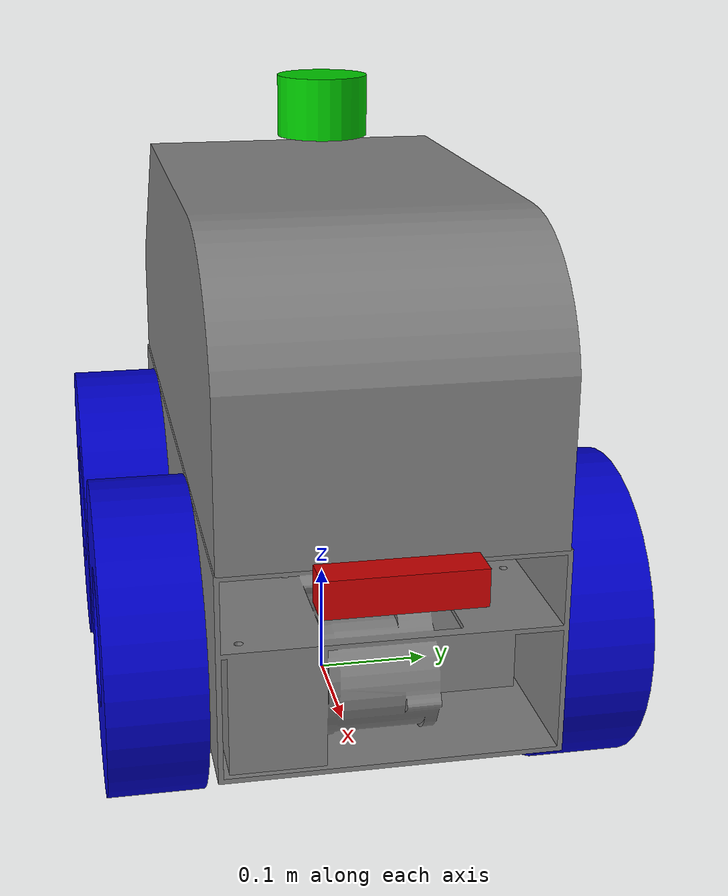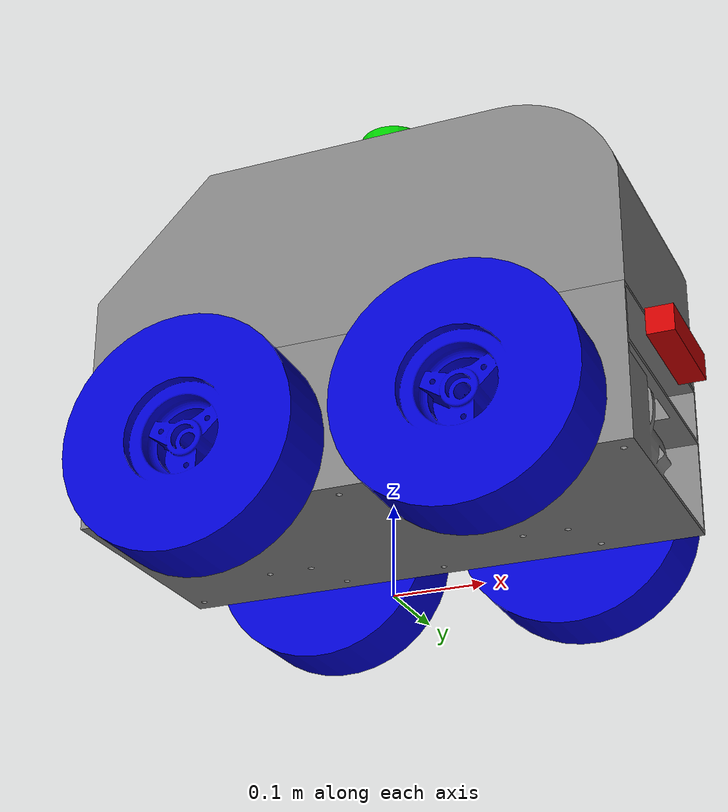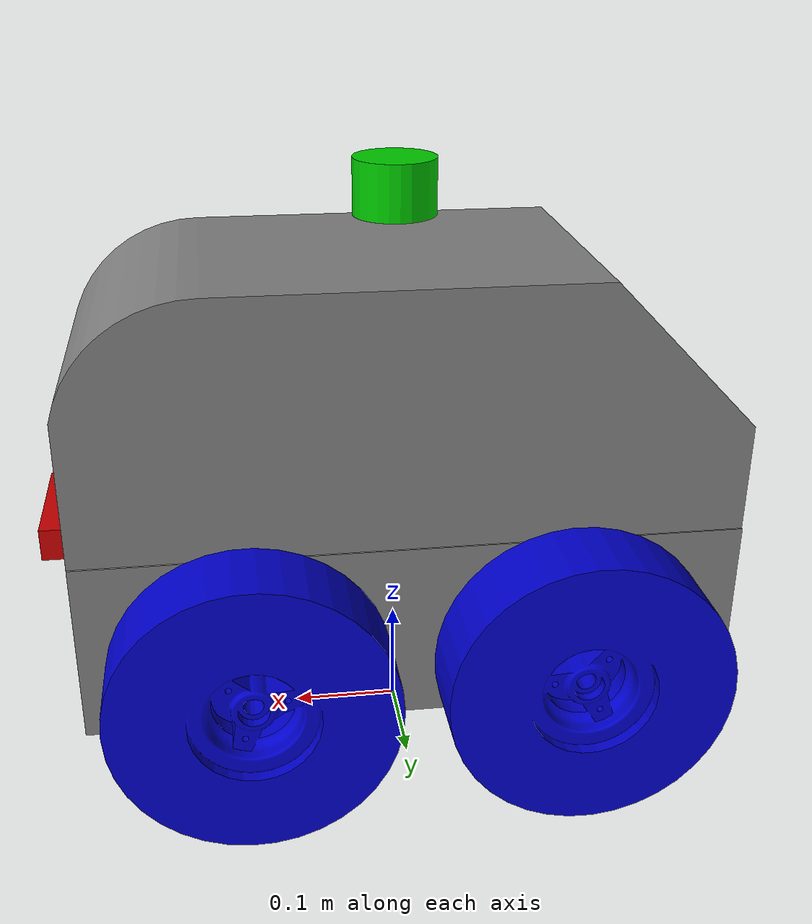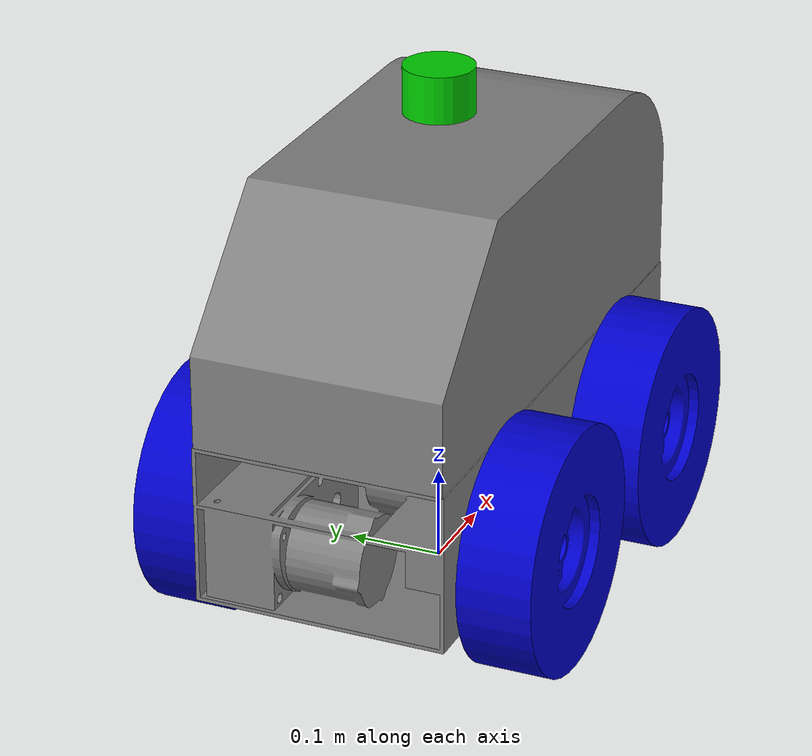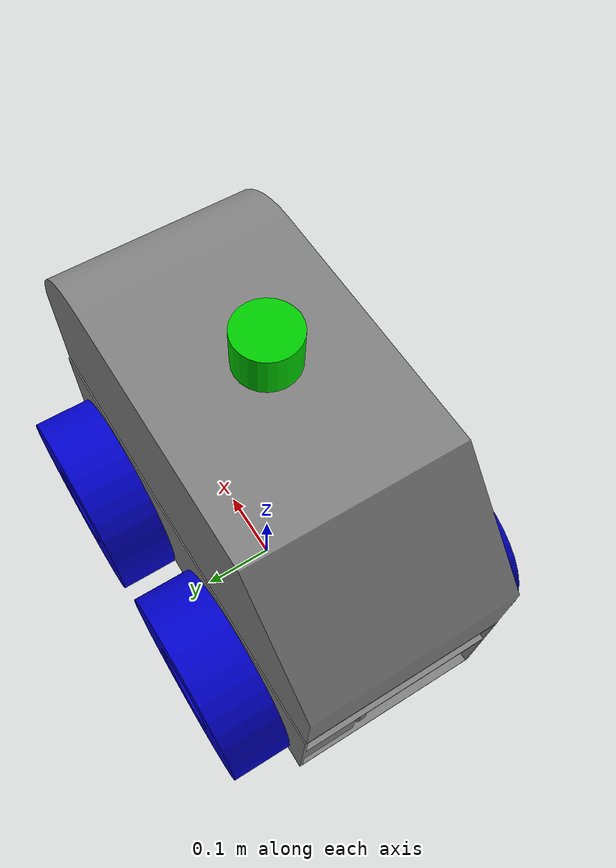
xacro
<?xml version="1.0"?>
<robot name="grass_hopper" xmlns:xacro="http://ros.org/wiki/xacro">

  <material name="black">
      <color rgba="0.0 0.0 0.0 1.0"/>
  </material>

  <material name="dark">
    <color rgba="0.3 0.3 0.3 1.0"/>
  </material>

  <material name="light_black">
    <color rgba="0.4 0.4 0.4 1.0"/>
  </material>

  <material name="blue">
    <color rgba="0.0 0.0 0.8 1.0"/>
  </material>

  <material name="green">
    <color rgba="0.0 0.8 0.0 1.0"/>
  </material>

  <material name="grey">
    <color rgba="0.5 0.5 0.5 1.0"/>
  </material>

  <material name="orange">
    <color rgba="1.0 0.4235 0.0392 1.0"/>
  </material>

  <material name="brown">
    <color rgba="0.8706 0.8118 0.7647 1.0"/>
  </material>

  <material name="red">
    <color rgba="0.8 0.0 0.0 1.0"/>
  </material>

  <material name="white">
    <color rgba="1.0 1.0 1.0 1.0"/>
  </material>

  <link name="base_footprint"/>

  <joint name="base_footprint_to_base_link" type="fixed">
    <parent link="base_footprint" />
    <child link="base_link" />
    <origin xyz="0 0 0.075"/>
  </joint>

  <link name="base_link">
    <visual>
      <origin xyz="0 0 0" rpy="0 0 0" />
      <geometry>
        <mesh filename="file:///home/dhaval_lad/dhaval_ws/src/grasshopper_description/meshes/base_link.stl" />
      </geometry>
      <material name="grey"/>
    </visual>

    <collision>
      <origin xyz="0 0 0.081" rpy="0 0 0" />
      <geometry>
        <box size="0.6 0.269 0.17"/>
      </geometry>
    </collision>

    <inertial>
      <origin xyz="0 0 0.05" rpy="0 0 0" />
      <mass value="25" />
      25kg
      <inertia ixx="0.2109604" ixy="0" ixz="0" iyy="0.5502083" iyz="0" izz="0.7575208" />
    </inertial>
  </link>

  <gazebo reference="base_link">
    <visual>
      <material>
        <ambient>0.4 0.4 0.4 1.0</ambient>
        <diffuse>0.4 0.4 0.4 1.0</diffuse>
        <specular>0.99 0.99 0.99 1.0</specular>
        <emissive>0.0 0.0 0.0 0.0</emissive>
      </material>
    </visual>
  </gazebo>

  <link name="upper_base_link">
    <visual>
      <origin xyz="-0.3 -0.1325 0" rpy="1.57 0 1.57" />
      <geometry>
        <mesh filename="file:///home/dhaval_lad/dhaval_ws/src/grasshopper_description/meshes/upper_base_link.stl" scale="0.001 0.001 0.001" />
      </geometry>
      <material name="grey"/>
    </visual>

    <collision>
      <origin xyz="-0.3 -0.1325 0" rpy="1.57 0 1.57" />
      <geometry>
        <mesh filename="file:///home/dhaval_lad/dhaval_ws/src/grasshopper_description/meshes/upper_base_link.stl" scale="0.001 0.001 0.001" />
      </geometry>
    </collision>

    <inertial>
      <origin xyz="0 0 0" rpy="0 0 0" />
      <mass value="1" />
      <inertia ixx="8.438416e-3" ixy="0" ixz="0" iyy="0.0324083" iyz="0" izz="0.03603008" />
    </inertial>
  </link>

  <gazebo reference="upper_base_link">
    <visual>
      <material>
        <ambient>0.75 0.75 0.75 1.0</ambient>
        <diffuse>0.75 0.75 0.75 1.0</diffuse>
        <specular>0.99 0.99 0.99 1.0</specular>
        <emissive>0.0 0.0 0.0 0.0</emissive>
      </material>
    </visual>
  </gazebo>

  <joint name="base_link_to_upper_base_link" type="fixed">
    <parent link="base_link" />
    <child link="upper_base_link" />
    <origin xyz="0 0 0.165"/>
  </joint>

  <link name="left_front_wheel">
    <visual>
      <origin xyz="0 0.04 0" rpy="1.57 0 0" />
      <geometry>
        <mesh filename="file:///home/dhaval_lad/dhaval_ws/src/grasshopper_description/meshes/left_front_wheel.stl" />
      </geometry>
      <material name="blue"/>
    </visual>

    <collision>
      <origin xyz="0 0.04 0" rpy="1.57 0 0" />
      <geometry>
        <mesh filename="file:///home/dhaval_lad/dhaval_ws/src/grasshopper_description/meshes/left_front_wheel.stl" />
      </geometry>
    </collision>

    <inertial>
      <origin xyz="0 0 0" rpy="0 0 0" />
      <mass value="0.7" />
      0.5kg
      <inertia ixx="3.545208e-3" ixy="0" ixz="0" iyy="3.545208e-3" iyz="0" izz="6.34375e-3" />
    </inertial>
  </link>

  <gazebo reference="left_front_wheel">
    <mu1>0.8</mu1>
    <mu2>0.7</mu2>
    <visual>
      <material>
        <ambient>0.1764 0.4588 0.8509 1.0</ambient>
        <diffuse>0.1764 0.4588 0.8509 1.0</diffuse>
        <specular>0.1764 0.4588 0.8509 1.0</specular>
        <emissive>0.0 0.0 0.0 0.0</emissive>
      </material>
    </visual>
  </gazebo>

  <joint name="base_link_to_left_front_wheel" type="continuous">
    <origin xyz="0.1483 0.1745 0.05" rpy="0 0 0" />
    <parent link="base_link" />
    <child link="left_front_wheel" />
    <axis xyz="0 1 0" />
  </joint>

  <link name="right_front_wheel">
    <visual>
      <origin xyz="0 -0.04 0" rpy="1.57 0 0" />
      <geometry>
        <mesh filename="file:///home/dhaval_lad/dhaval_ws/src/grasshopper_description/meshes/right_front_wheel.stl" />
      </geometry>
      <material name="blue"/>
    </visual>

    <collision>
      <origin xyz="0 -0.04 0" rpy="1.57 0 0" />
      <geometry>
        <mesh filename="file:///home/dhaval_lad/dhaval_ws/src/grasshopper_description/meshes/right_front_wheel.stl" />
      </geometry>
    </collision>

    <inertial>
      <origin xyz="0 0 0" rpy="0 0 0" />
      <mass value="0.7" />
      0.5kg
      <inertia ixx="3.545208e-3" ixy="0" ixz="0" iyy="3.545208e-3" iyz="0" izz="6.34375e-3" />
    </inertial>
  </link>

  <gazebo reference="right_front_wheel">
    <mu1>0.8</mu1>
    <mu2>0.7</mu2>
    <visual>
      <material>
        <ambient>0.1764 0.4588 0.8509 1.0</ambient>
        <diffuse>0.1764 0.4588 0.8509 1.0</diffuse>
        <specular>0.1764 0.4588 0.8509 1.0</specular>
        <emissive>0.0 0.0 0.0 0.0</emissive>
      </material>
    </visual>
  </gazebo>

  <joint name="base_link_to_right_front_wheel" type="continuous">
    <origin xyz="0.1483 -0.1745 0.05" rpy="0 0 0" />
    <parent link="base_link" />
    <child link="right_front_wheel" />
    <axis xyz="0 1 0" />
  </joint>

  <link name="left_rear_wheel">
    <visual>
      <origin xyz="0 0.04 0" rpy="1.57 0 0" />
      <geometry>
        <mesh filename="file:///home/dhaval_lad/dhaval_ws/src/grasshopper_description/meshes/left_rear_wheel.stl" />
      </geometry>
      <material name="blue"/>
    </visual>

    <collision>
      <origin xyz="0 0.04 0" rpy="1.57 0 0" />
      <geometry>
        <mesh filename="file:///home/dhaval_lad/dhaval_ws/src/grasshopper_description/meshes/left_rear_wheel.stl" />
      </geometry>
    </collision>

    <inertial>
      <origin xyz="0 0 0" rpy="0 0 0" />
      <mass value="0.7" />
      0.5kg
      <inertia ixx="3.545208e-3" ixy="0" ixz="0" iyy="3.545208e-3" iyz="0" izz="6.34375e-3" />
    </inertial>
  </link>

  <gazebo reference="left_rear_wheel">
    <mu1>0.8</mu1>
    <mu2>0.7</mu2>
    <visual>
      <material>
        <ambient>0.1764 0.4588 0.8509 1.0</ambient>
        <diffuse>0.1764 0.4588 0.8509 1.0</diffuse>
        <specular>0.1764 0.4588 0.8509 1.0</specular>
        <emissive>0.0 0.0 0.0 0.0</emissive>
      </material>
    </visual>
  </gazebo>

  <joint name="base_link_to_left_rear_wheel" type="continuous">
    <origin xyz="-0.1483 0.1745 0.05" rpy="0 0 0" />
    <parent link="base_link" />
    <child link="left_rear_wheel" />
    <axis xyz="0 1 0" />
  </joint>

  <link name="right_rear_wheel">
    <visual>
      <origin xyz="0 -0.04 0" rpy="1.57 0 0" />
      <geometry>
        <mesh filename="file:///home/dhaval_lad/dhaval_ws/src/grasshopper_description/meshes/right_rear_wheel.stl" />
      </geometry>
      <material name="blue"/>
    </visual>

    <collision>
      <origin xyz="0 -0.04 0" rpy="1.57 0 0" />
      <geometry>
        <mesh filename="file:///home/dhaval_lad/dhaval_ws/src/grasshopper_description/meshes/right_rear_wheel.stl" />
      </geometry>
    </collision>

    <inertial>
      <origin xyz="0 0 0" rpy="0 0 0" />
      <mass value="0.7" />
      0.5kg
      <inertia ixx="3.545208e-3" ixy="0" ixz="0" iyy="3.545208e-3" iyz="0" izz="6.34375e-3" />
    </inertial>
  </link>

  <gazebo reference="right_rear_wheel">
    <mu1>0.8</mu1>
    <mu2>0.7</mu2>
    <visual>
      <material>
        <ambient>0.1764 0.4588 0.8509 1.0</ambient>
        <diffuse>0.1764 0.4588 0.8509 1.0</diffuse>
        <specular>0.1764 0.4588 0.8509 1.0</specular>
        <emissive>0.0 0.0 0.0 0.0</emissive>
      </material>
    </visual>
  </gazebo>

  <joint name="base_link_to_right_rear_wheel" type="continuous">
    <origin xyz="-0.1483 -0.1745 0.05" rpy="0 0 0" />
    <parent link="base_link" />
    <child link="right_rear_wheel" />
    <axis xyz="0 1 0" />
  </joint>

  <gazebo>
    <plugin name="diff_drive" filename="libgazebo_ros_diff_drive.so">

      <num_wheel_pairs>2</num_wheel_pairs>
      <left_joint>base_link_to_left_front_wheel</left_joint>
      <right_joint>base_link_to_right_front_wheel</right_joint>
      <left_joint>base_link_to_left_rear_wheel</left_joint>
      <right_joint>base_link_to_right_rear_wheel</right_joint>

      <wheel_separation>0.349</wheel_separation>
      <wheel_separation>0.349</wheel_separation>
      <wheel_diameter>0.25</wheel_diameter>
      <wheel_diameter>0.25</wheel_diameter>

      <update_rate>50</update_rate>
      <max_wheel_torque>20</max_wheel_torque>
      <max_wheel_velocity>80</max_wheel_velocity>
      <wheel_torque_limit>15</wheel_torque_limit>
      <max_wheel_acceleration>1</max_wheel_acceleration>
      <robot_base_frame>base_footprint</robot_base_frame>
      <publish_odom>true</publish_odom>
      <publish_odom_tf>true</publish_odom_tf>
      <publish_wheel_tf>true</publish_wheel_tf>
      <odometry_frame>odom</odometry_frame>

    </plugin>
  </gazebo>

  <link name="laser">
    <visual>
      <origin xyz="0 0 -0.025" rpy="0 0 0"/>
      <geometry>
        <cylinder radius="0.0375" length="0.05"/>
      </geometry>
      <material name="green"/>
    </visual>
    <collision>
      <origin xyz="0 0 -0.025" rpy="0 0 0"/>
      <geometry>
        <cylinder radius="0.0375" length="0.05"/>
      </geometry>
    </collision>

    <inertial>
      <origin xyz="0 0 0" rpy="0 0 0"/>
      <mass value="0.2"/>
      <inertia ixx="1.1197916e-4" ixy="0" ixz="0"
                iyy="1.1197916e-4" iyz="0"
                izz="1.40625e-4" />
    </inertial>
  </link>

  <gazebo reference="laser">
    <visual>
      <material>
        <ambient>0.003 0.639 0.223 1.0</ambient>
        <diffuse>0.003 0.639 0.223 1.0</diffuse>
        <specular>0.003 0.639 0.223 1.0</specular>
        <emissive>0.0 0.0 0.0 0.0</emissive>
      </material>
    </visual>
  </gazebo>

  <joint name="base_link_to_laser" type="fixed">
    <parent link="base_link"/>
    <child link="laser"/>
    <!-- without upper base -->
    <origin xyz="0 0 0.48" rpy="0 0 0" />   <!-- with upper base -->
  </joint>

  <gazebo reference="laser">
    <sensor type="ray" name="laser_lidar">
      <always_on>true</always_on>
      <update_rate>15</update_rate>
      <pose>0 0 0 0 0 0</pose>
      <visualize>true</visualize>
      <ray>
        <scan>
          <horizontal>
            <samples>270</samples>
            <resolution>1</resolution>
            <min_angle>-1.5708</min_angle>
            <max_angle>3.1415926</max_angle>
          </horizontal>
        </scan>
        <range>
          <min>0.08</min>
          <max>10.0</max>
          <resolution>0.01</resolution>
        </range>
      </ray>
      <plugin name="laser" filename="libgazebo_ros_ray_sensor.so">
        <ros>
          <remapping>~/out:=scan</remapping>
        </ros>
        <output_type>sensor_msgs/LaserScan</output_type>
        <alwaysOn>true</alwaysOn>
        <updateRate>15</updateRate>
        <topicName>scan</topicName>
        <frame_name>laser</frame_name>
        <output_type>sensor_msgs/LaserScan</output_type>
      </plugin>
    </sensor>
  </gazebo>

  <link name="imu_link"/>

  <joint name="base_link_to_imu_link" type="fixed">
    <parent link="base_link"/>
    <child link="imu_link"/>
    <origin xyz="0 0 0.17" rpy="0 0 0"/>
  </joint>

  <gazebo reference="imu_link">
    <gravity>true</gravity>
    <sensor name="imu_sensor" type="imu">
    <always_on>true</always_on>
    <update_rate>100</update_rate>
    <visualize>true</visualize>
    <topic>__default_topic__</topic>
    <plugin filename="libgazebo_ros_imu_sensor.so" name="imu_plugin">
        <ros>
          <remapping>~/out:=imu/data</remapping>
        </ros>
        <topicName>imu/data</topicName>
        <bodyName>imu_link</bodyName>
        <gaussianNoise>0.0</gaussianNoise>
        <xyzOffset>0 0 0</xyzOffset>
        <rpyOffset>0 0 0</rpyOffset>
        <frameName>imu_link</frameName>
        <initialOrientationAsReference>false</initialOrientationAsReference>
    </plugin>
    <pose>0 0 0 0 0 0</pose>
    </sensor>
  </gazebo>

  <link name="camera_link">
    <visual>
      <origin xyz="0 0 0" rpy="0 0 0"/>
      <geometry>
        <box size="0.030 0.124 0.030"/>
      </geometry>
      <material name="red"/>
    </visual>

    <collision>
      <origin xyz="0 0 0" rpy="0 0 0"/>
      <geometry>
        <box size="0.030 0.124 0.030"/>
      </geometry>
    </collision>

    <inertial>
      <origin xyz="0 0 0" rpy="0 0 0"/>
      <mass value="0.135"/>
      <inertia ixx="1.83105e-4" ixy="0.0" ixz="0.0"
                iyy="2.025e-5" iyz="0.0"
                izz="1.83105e-4"/>
    </inertial>
  </link>

  <joint name="camera_to_base_link" type="fixed">
    <parent link="base_link"/>
    <child link="camera_link"/>
    <origin xyz="0.315 0 0.155" rpy="0 0 0"/>
  </joint>

  <link name="camera_depth_link"/>
  <joint name="camera_depth_joint" type="fixed">
    <origin xyz="0 0 0" rpy="-1.57 0 -1.57"/>
    <parent link="camera_link"/>
    <child link="camera_depth_link"/>
  </joint>

  <gazebo reference="camera_link">
    <sensor name="camera" type="depth">
      <pose> 0 0 0 0 0 0 </pose>
      <visualization>true</visualization>
      <update_rate>50.0</update_rate>
      <camera>
        <horizontal_fov>1.50098</horizontal_fov>
        <image>
          <width>640</width>
          <height>480</height>
          <format>R8G8B8</format>
        </image>
        <clip>
          <near>0.05</near>
          <far>8.0</far>
        </clip>
      </camera>

      <plugin name="camera_controller" filename="libgazebo_ros_camera.so">
        <frame_name>camera_depth_link</frame_name>
        <min_depth>0.1</min_depth>
        <max_depth>100.0</max_depth>
      </plugin>
    </sensor>
  </gazebo>

  <gazebo reference="camera_link">
    <visual>
      <material>
        <ambient>0.8 0.0 0.0 1.0</ambient>
        <diffuse>0.8 0.0 0.0 1.0</diffuse>
        <specular>0.8 0.0 0.0 1.0</specular>
        <emissive>0.0 0.0 0.0 0.0</emissive>
      </material>
    </visual>
  </gazebo>

</robot>
